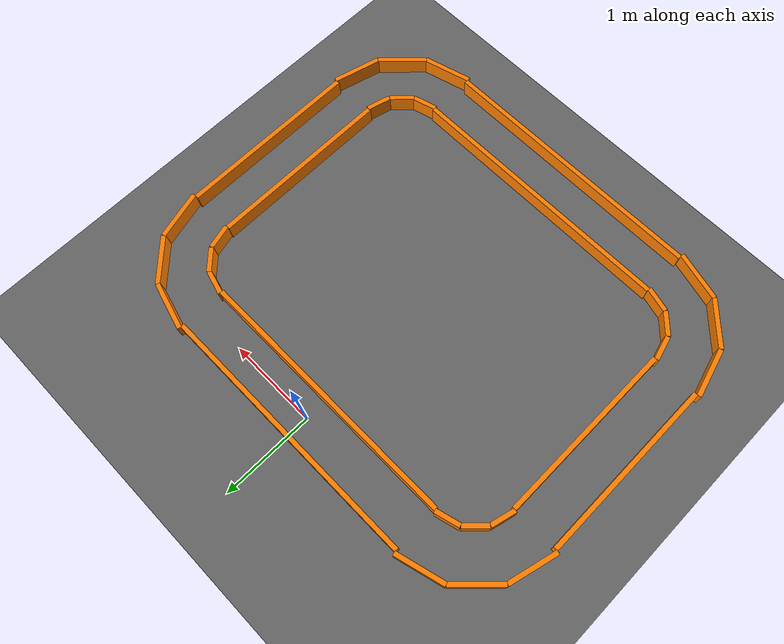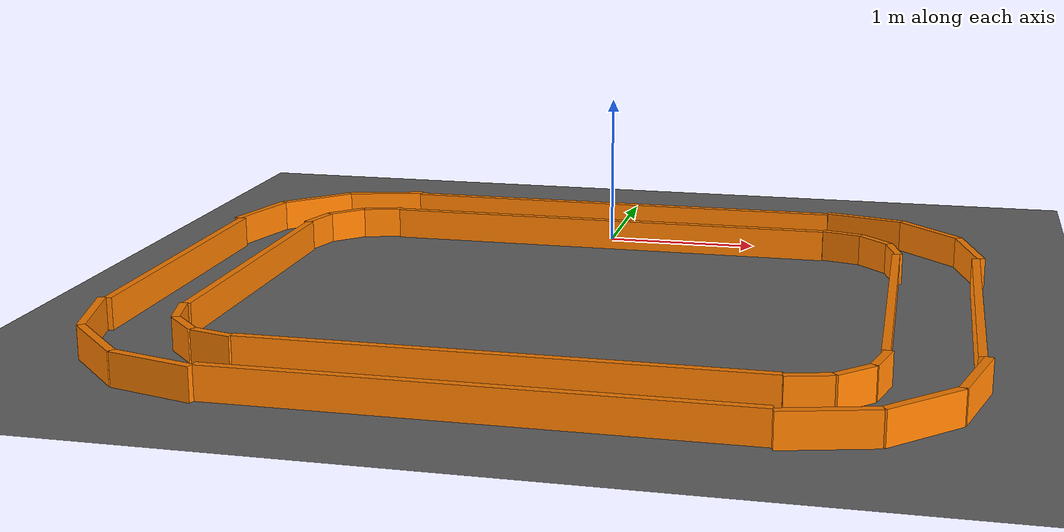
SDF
<?xml version="1.0" ?>
<sdf version="1.9">
  <world name="empty">
    <physics name="1ms" type="ignored">
      <max_step_size>0.001</max_step_size>
      <real_time_factor>1.0</real_time_factor>
    </physics>
    <plugin filename="gz-sim-physics-system" name="gz::sim::systems::Physics" />
    <plugin filename="gz-sim-user-commands-system" name="gz::sim::systems::UserCommands" />
    <plugin filename="gz-sim-scene-broadcaster-system" name="gz::sim::systems::SceneBroadcaster" />

    <light type="directional" name="sun">
      <cast_shadows>true</cast_shadows>
      <pose>0 0 10 0 0 0</pose>
      <diffuse>0.8 0.8 0.8 1</diffuse>
      <specular>0.2 0.2 0.2 1</specular>
      <direction>-0.5 0.1 -0.9</direction>
    </light>

    <model name="ground_plane">
      <static>true</static>
      <link name="link">
        <collision name="collision">
          <geometry><plane><normal>0 0 1</normal><size>20 20</size></plane></geometry>
        </collision>
        <visual name="visual">
          <geometry><plane><normal>0 0 1</normal><size>20 20</size></plane></geometry>
          <material>
            <ambient>0.4 0.4 0.4 1</ambient>
            <diffuse>0.4 0.4 0.4 1</diffuse>
          </material>
        </visual>
      </link>
    </model>

    <model name="city_track_map">
      <static>true</static>

      <link name="top_outer"><pose>0 0.25 0.1 0 0 0</pose><visual name="v"><geometry><box><size>3.0 0.05 0.2</size></box></geometry><material><ambient>1 0.5 0 1</ambient></material></visual><collision name="c"><geometry><box><size>3.0 0.05 0.2</size></box></geometry></collision></link>
      <link name="top_inner"><pose>0 -0.25 0.1 0 0 0</pose><visual name="v"><geometry><box><size>3.0 0.05 0.2</size></box></geometry><material><ambient>1 0.5 0 1</ambient></material></visual><collision name="c"><geometry><box><size>3.0 0.05 0.2</size></box></geometry></collision></link>

      <link name="bottom_outer"><pose>0 -3.75 0.1 0 0 0</pose><visual name="v"><geometry><box><size>3.0 0.05 0.2</size></box></geometry><material><ambient>1 0.5 0 1</ambient></material></visual><collision name="c"><geometry><box><size>3.0 0.05 0.2</size></box></geometry></collision></link>
      <link name="bottom_inner"><pose>0 -3.25 0.1 0 0 0</pose><visual name="v"><geometry><box><size>3.0 0.05 0.2</size></box></geometry><material><ambient>1 0.5 0 1</ambient></material></visual><collision name="c"><geometry><box><size>3.0 0.05 0.2</size></box></geometry></collision></link>

      <link name="right_outer"><pose>2.5 -1.75 0.1 0 0 1.5708</pose><visual name="v"><geometry><box><size>2.0 0.05 0.2</size></box></geometry><material><ambient>1 0.5 0 1</ambient></material></visual><collision name="c"><geometry><box><size>2.0 0.05 0.2</size></box></geometry></collision></link>
      <link name="right_inner"><pose>2.0 -1.75 0.1 0 0 1.5708</pose><visual name="v"><geometry><box><size>2.0 0.05 0.2</size></box></geometry><material><ambient>1 0.5 0 1</ambient></material></visual><collision name="c"><geometry><box><size>2.0 0.05 0.2</size></box></geometry></collision></link>

      <link name="left_outer"><pose>-2.5 -1.75 0.1 0 0 1.5708</pose><visual name="v"><geometry><box><size>2.0 0.05 0.2</size></box></geometry><material><ambient>1 0.5 0 1</ambient></material></visual><collision name="c"><geometry><box><size>2.0 0.05 0.2</size></box></geometry></collision></link>
      <link name="left_inner"><pose>-2.0 -1.75 0.1 0 0 1.5708</pose><visual name="v"><geometry><box><size>2.0 0.05 0.2</size></box></geometry><material><ambient>1 0.5 0 1</ambient></material></visual><collision name="c"><geometry><box><size>2.0 0.05 0.2</size></box></geometry></collision></link>

      <link name="tr_o1"><pose>2.466 -0.491 0.1 0 0 1.832</pose><visual name="v"><geometry><box><size>0.536 0.05 0.2</size></box></geometry><material><ambient>1 0.5 0 1</ambient></material></visual><collision name="c"><geometry><box><size>0.536 0.05 0.2</size></box></geometry></collision></link>
      <link name="tr_o2"><pose>2.207 -0.043 0.1 0 0 2.356</pose><visual name="v"><geometry><box><size>0.536 0.05 0.2</size></box></geometry><material><ambient>1 0.5 0 1</ambient></material></visual><collision name="c"><geometry><box><size>0.536 0.05 0.2</size></box></geometry></collision></link>
      <link name="tr_o3"><pose>1.759 0.216 0.1 0 0 2.879</pose><visual name="v"><geometry><box><size>0.536 0.05 0.2</size></box></geometry><material><ambient>1 0.5 0 1</ambient></material></visual><collision name="c"><geometry><box><size>0.536 0.05 0.2</size></box></geometry></collision></link>
      <link name="tr_i1"><pose>1.983 -0.621 0.1 0 0 1.832</pose><visual name="v"><geometry><box><size>0.268 0.05 0.2</size></box></geometry><material><ambient>1 0.5 0 1</ambient></material></visual><collision name="c"><geometry><box><size>0.268 0.05 0.2</size></box></geometry></collision></link>
      <link name="tr_i2"><pose>1.854 -0.396 0.1 0 0 2.356</pose><visual name="v"><geometry><box><size>0.268 0.05 0.2</size></box></geometry><material><ambient>1 0.5 0 1</ambient></material></visual><collision name="c"><geometry><box><size>0.268 0.05 0.2</size></box></geometry></collision></link>
      <link name="tr_i3"><pose>1.629 -0.267 0.1 0 0 2.879</pose><visual name="v"><geometry><box><size>0.268 0.05 0.2</size></box></geometry><material><ambient>1 0.5 0 1</ambient></material></visual><collision name="c"><geometry><box><size>0.268 0.05 0.2</size></box></geometry></collision></link>

      <link name="tl_o1"><pose>-2.466 -0.491 0.1 0 0 1.309</pose><visual name="v"><geometry><box><size>0.536 0.05 0.2</size></box></geometry><material><ambient>1 0.5 0 1</ambient></material></visual><collision name="c"><geometry><box><size>0.536 0.05 0.2</size></box></geometry></collision></link>
      <link name="tl_o2"><pose>-2.207 -0.043 0.1 0 0 0.785</pose><visual name="v"><geometry><box><size>0.536 0.05 0.2</size></box></geometry><material><ambient>1 0.5 0 1</ambient></material></visual><collision name="c"><geometry><box><size>0.536 0.05 0.2</size></box></geometry></collision></link>
      <link name="tl_o3"><pose>-1.759 0.216 0.1 0 0 0.262</pose><visual name="v"><geometry><box><size>0.536 0.05 0.2</size></box></geometry><material><ambient>1 0.5 0 1</ambient></material></visual><collision name="c"><geometry><box><size>0.536 0.05 0.2</size></box></geometry></collision></link>
      <link name="tl_i1"><pose>-1.983 -0.621 0.1 0 0 1.309</pose><visual name="v"><geometry><box><size>0.268 0.05 0.2</size></box></geometry><material><ambient>1 0.5 0 1</ambient></material></visual><collision name="c"><geometry><box><size>0.268 0.05 0.2</size></box></geometry></collision></link>
      <link name="tl_i2"><pose>-1.854 -0.396 0.1 0 0 0.785</pose><visual name="v"><geometry><box><size>0.268 0.05 0.2</size></box></geometry><material><ambient>1 0.5 0 1</ambient></material></visual><collision name="c"><geometry><box><size>0.268 0.05 0.2</size></box></geometry></collision></link>
      <link name="tl_i3"><pose>-1.629 -0.267 0.1 0 0 0.262</pose><visual name="v"><geometry><box><size>0.268 0.05 0.2</size></box></geometry><material><ambient>1 0.5 0 1</ambient></material></visual><collision name="c"><geometry><box><size>0.268 0.05 0.2</size></box></geometry></collision></link>

      <link name="bl_o1"><pose>-2.466 -3.009 0.1 0 0 -1.309</pose><visual name="v"><geometry><box><size>0.536 0.05 0.2</size></box></geometry><material><ambient>1 0.5 0 1</ambient></material></visual><collision name="c"><geometry><box><size>0.536 0.05 0.2</size></box></geometry></collision></link>
      <link name="bl_o2"><pose>-2.207 -3.457 0.1 0 0 -0.785</pose><visual name="v"><geometry><box><size>0.536 0.05 0.2</size></box></geometry><material><ambient>1 0.5 0 1</ambient></material></visual><collision name="c"><geometry><box><size>0.536 0.05 0.2</size></box></geometry></collision></link>
      <link name="bl_o3"><pose>-1.759 -3.716 0.1 0 0 -0.262</pose><visual name="v"><geometry><box><size>0.536 0.05 0.2</size></box></geometry><material><ambient>1 0.5 0 1</ambient></material></visual><collision name="c"><geometry><box><size>0.536 0.05 0.2</size></box></geometry></collision></link>
      <link name="bl_i1"><pose>-1.983 -2.879 0.1 0 0 -1.309</pose><visual name="v"><geometry><box><size>0.268 0.05 0.2</size></box></geometry><material><ambient>1 0.5 0 1</ambient></material></visual><collision name="c"><geometry><box><size>0.268 0.05 0.2</size></box></geometry></collision></link>
      <link name="bl_i2"><pose>-1.854 -3.104 0.1 0 0 -0.785</pose><visual name="v"><geometry><box><size>0.268 0.05 0.2</size></box></geometry><material><ambient>1 0.5 0 1</ambient></material></visual><collision name="c"><geometry><box><size>0.268 0.05 0.2</size></box></geometry></collision></link>
      <link name="bl_i3"><pose>-1.629 -3.233 0.1 0 0 -0.262</pose><visual name="v"><geometry><box><size>0.268 0.05 0.2</size></box></geometry><material><ambient>1 0.5 0 1</ambient></material></visual><collision name="c"><geometry><box><size>0.268 0.05 0.2</size></box></geometry></collision></link>

      <link name="br_o1"><pose>2.466 -3.009 0.1 0 0 -1.832</pose><visual name="v"><geometry><box><size>0.536 0.05 0.2</size></box></geometry><material><ambient>1 0.5 0 1</ambient></material></visual><collision name="c"><geometry><box><size>0.536 0.05 0.2</size></box></geometry></collision></link>
      <link name="br_o2"><pose>2.207 -3.457 0.1 0 0 -2.356</pose><visual name="v"><geometry><box><size>0.536 0.05 0.2</size></box></geometry><material><ambient>1 0.5 0 1</ambient></material></visual><collision name="c"><geometry><box><size>0.536 0.05 0.2</size></box></geometry></collision></link>
      <link name="br_o3"><pose>1.759 -3.716 0.1 0 0 -2.879</pose><visual name="v"><geometry><box><size>0.536 0.05 0.2</size></box></geometry><material><ambient>1 0.5 0 1</ambient></material></visual><collision name="c"><geometry><box><size>0.536 0.05 0.2</size></box></geometry></collision></link>
      <link name="br_i1"><pose>1.983 -2.879 0.1 0 0 -1.832</pose><visual name="v"><geometry><box><size>0.268 0.05 0.2</size></box></geometry><material><ambient>1 0.5 0 1</ambient></material></visual><collision name="c"><geometry><box><size>0.268 0.05 0.2</size></box></geometry></collision></link>
      <link name="br_i2"><pose>1.854 -3.104 0.1 0 0 -2.356</pose><visual name="v"><geometry><box><size>0.268 0.05 0.2</size></box></geometry><material><ambient>1 0.5 0 1</ambient></material></visual><collision name="c"><geometry><box><size>0.268 0.05 0.2</size></box></geometry></collision></link>
      <link name="br_i3"><pose>1.629 -3.233 0.1 0 0 -2.879</pose><visual name="v"><geometry><box><size>0.268 0.05 0.2</size></box></geometry><material><ambient>1 0.5 0 1</ambient></material></visual><collision name="c"><geometry><box><size>0.268 0.05 0.2</size></box></geometry></collision></link>
    </model>
  </world>
</sdf>
